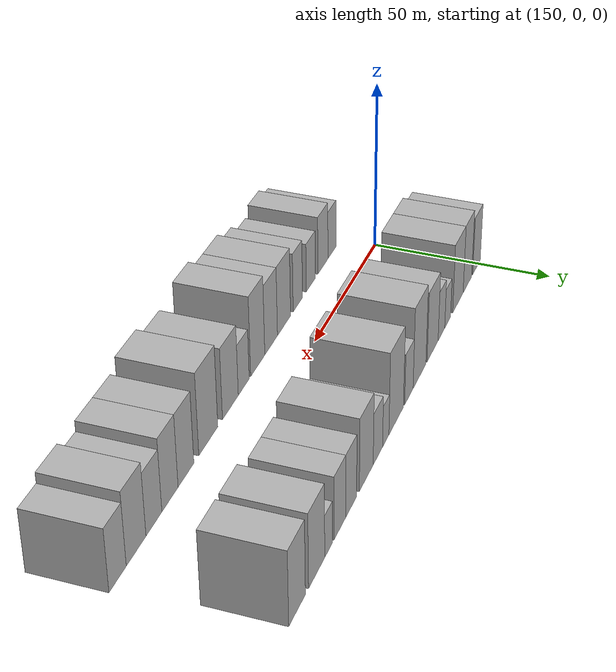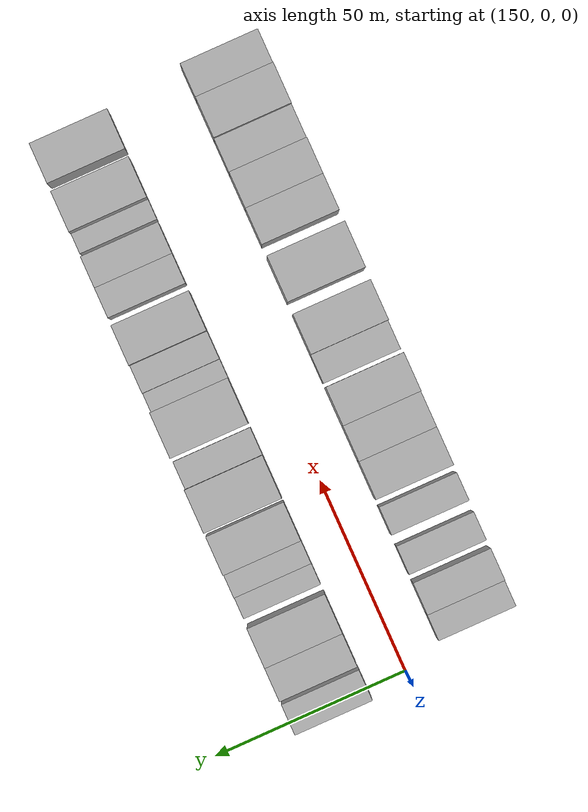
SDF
<sdf version="1.6">
 <world name="default">
  <model name="building_16">
   <static>1</static>
   <pose>152.1717 20.0000 0 0.000000 0.000000 1.570796</pose>
   <link name="link">
    <pose>0 0 9.00 0 0 0</pose>
    <collision name="collision"><geometry><box><size>20.0000 7.8726 18.0000</size></box></geometry></collision>
    <visual name="visual">
     <cast_shadows>0</cast_shadows>
     <geometry><box><size>20.0000 7.8726 18.0000</size></box></geometry>
     <material>
      <script>
       <uri>model://HANNAS_wall/materials/scripts</uri>
       <uri>model://HANNAS_wall/materials/textures</uri>
       <name>vrc/HANNAS_wall</name>
      </script>
     </material>
    </visual>
   </link>
  </model>
  <model name="building_17">
   <static>1</static>
   <pose>161.3731 20.0000 0 0.000000 0.000000 1.570796</pose>
   <link name="link">
    <pose>0 0 10.50 0 0 0</pose>
    <collision name="collision"><geometry><box><size>20.0000 8.5301 21.0000</size></box></geometry></collision>
    <visual name="visual">
     <cast_shadows>0</cast_shadows>
     <geometry><box><size>20.0000 8.5301 21.0000</size></box></geometry>
     <material>
      <script>
       <uri>model://HANNAS_wall/materials/scripts</uri>
       <uri>model://HANNAS_wall/materials/textures</uri>
       <name>vrc/HANNAS_wall</name>
      </script>
     </material>
    </visual>
   </link>
  </model>
  <model name="building_18">
   <static>1</static>
   <pose>170.7369 20.0000 0 0.000000 0.000000 1.570796</pose>
   <link name="link">
    <pose>0 0 10.50 0 0 0</pose>
    <collision name="collision"><geometry><box><size>20.0000 10.1977 21.0000</size></box></geometry></collision>
    <visual name="visual">
     <cast_shadows>0</cast_shadows>
     <geometry><box><size>20.0000 10.1977 21.0000</size></box></geometry>
     <material>
      <script>
       <uri>model://HANNAS_wall/materials/scripts</uri>
       <uri>model://HANNAS_wall/materials/textures</uri>
       <name>vrc/HANNAS_wall</name>
      </script>
     </material>
    </visual>
   </link>
  </model>
  <model name="building_19">
   <static>1</static>
   <pose>180.6110 20.0000 0 0.000000 0.000000 1.570796</pose>
   <link name="link">
    <pose>0 0 6.00 0 0 0</pose>
    <collision name="collision"><geometry><box><size>20.0000 5.5505 12.0000</size></box></geometry></collision>
    <visual name="visual">
     <cast_shadows>0</cast_shadows>
     <geometry><box><size>20.0000 5.5505 12.0000</size></box></geometry>
     <material>
      <script>
       <uri>model://HANNAS_wall/materials/scripts</uri>
       <uri>model://HANNAS_wall/materials/textures</uri>
       <name>vrc/HANNAS_wall</name>
      </script>
     </material>
    </visual>
   </link>
  </model>
  <model name="building_20">
   <static>1</static>
   <pose>186.4364 20.0000 0 0.000000 0.000000 1.570796</pose>
   <link name="link">
    <pose>0 0 7.50 0 0 0</pose>
    <collision name="collision"><geometry><box><size>20.0000 6.1003 15.0000</size></box></geometry></collision>
    <visual name="visual">
     <cast_shadows>0</cast_shadows>
     <geometry><box><size>20.0000 6.1003 15.0000</size></box></geometry>
     <material>
      <script>
       <uri>model://HANNAS_wall/materials/scripts</uri>
       <uri>model://HANNAS_wall/materials/textures</uri>
       <name>vrc/HANNAS_wall</name>
      </script>
     </material>
    </visual>
   </link>
  </model>
  <model name="building_21">
   <static>1</static>
   <pose>194.4654 20.0000 0 0.000000 0.000000 1.570796</pose>
   <link name="link">
    <pose>0 0 10.50 0 0 0</pose>
    <collision name="collision"><geometry><box><size>20.0000 9.9576 21.0000</size></box></geometry></collision>
    <visual name="visual">
     <cast_shadows>0</cast_shadows>
     <geometry><box><size>20.0000 9.9576 21.0000</size></box></geometry>
     <material>
      <script>
       <uri>model://HANNAS_wall/materials/scripts</uri>
       <uri>model://HANNAS_wall/materials/textures</uri>
       <name>vrc/HANNAS_wall</name>
      </script>
     </material>
    </visual>
   </link>
  </model>
  <model name="building_22">
   <static>1</static>
   <pose>205.9872 20.0000 0 0.000000 0.000000 1.570796</pose>
   <link name="link">
    <pose>0 0 12.00 0 0 0</pose>
    <collision name="collision"><geometry><box><size>20.0000 11.0861 24.0000</size></box></geometry></collision>
    <visual name="visual">
     <cast_shadows>0</cast_shadows>
     <geometry><box><size>20.0000 11.0861 24.0000</size></box></geometry>
     <material>
      <script>
       <uri>model://HANNAS_wall/materials/scripts</uri>
       <uri>model://HANNAS_wall/materials/textures</uri>
       <name>vrc/HANNAS_wall</name>
      </script>
     </material>
    </visual>
   </link>
  </model>
  <model name="building_23">
   <static>1</static>
   <pose>215.0701 20.0000 0 0.000000 0.000000 1.570796</pose>
   <link name="link">
    <pose>0 0 7.50 0 0 0</pose>
    <collision name="collision"><geometry><box><size>20.0000 7.0795 15.0000</size></box></geometry></collision>
    <visual name="visual">
     <cast_shadows>0</cast_shadows>
     <geometry><box><size>20.0000 7.0795 15.0000</size></box></geometry>
     <material>
      <script>
       <uri>model://HANNAS_wall/materials/scripts</uri>
       <uri>model://HANNAS_wall/materials/textures</uri>
       <name>vrc/HANNAS_wall</name>
      </script>
     </material>
    </visual>
   </link>
  </model>
  <model name="building_24">
   <static>1</static>
   <pose>225.4711 20.0000 0 0.000000 0.000000 1.570796</pose>
   <link name="link">
    <pose>0 0 12.00 0 0 0</pose>
    <collision name="collision"><geometry><box><size>20.0000 11.7225 24.0000</size></box></geometry></collision>
    <visual name="visual">
     <cast_shadows>0</cast_shadows>
     <geometry><box><size>20.0000 11.7225 24.0000</size></box></geometry>
     <material>
      <script>
       <uri>model://HANNAS_wall/materials/scripts</uri>
       <uri>model://HANNAS_wall/materials/textures</uri>
       <name>vrc/HANNAS_wall</name>
      </script>
     </material>
    </visual>
   </link>
  </model>
  <model name="building_25">
   <static>1</static>
   <pose>233.8151 20.0000 0 0.000000 0.000000 1.570796</pose>
   <link name="link">
    <pose>0 0 6.00 0 0 0</pose>
    <collision name="collision"><geometry><box><size>20.0000 4.9655 12.0000</size></box></geometry></collision>
    <visual name="visual">
     <cast_shadows>0</cast_shadows>
     <geometry><box><size>20.0000 4.9655 12.0000</size></box></geometry>
     <material>
      <script>
       <uri>model://HANNAS_wall/materials/scripts</uri>
       <uri>model://HANNAS_wall/materials/textures</uri>
       <name>vrc/HANNAS_wall</name>
      </script>
     </material>
    </visual>
   </link>
  </model>
  <model name="building_26">
   <static>1</static>
   <pose>239.8933 20.0000 0 0.000000 0.000000 1.570796</pose>
   <link name="link">
    <pose>0 0 7.50 0 0 0</pose>
    <collision name="collision"><geometry><box><size>20.0000 7.1910 15.0000</size></box></geometry></collision>
    <visual name="visual">
     <cast_shadows>0</cast_shadows>
     <geometry><box><size>20.0000 7.1910 15.0000</size></box></geometry>
     <material>
      <script>
       <uri>model://HANNAS_wall/materials/scripts</uri>
       <uri>model://HANNAS_wall/materials/textures</uri>
       <name>vrc/HANNAS_wall</name>
      </script>
     </material>
    </visual>
   </link>
  </model>
  <model name="building_27">
   <static>1</static>
   <pose>248.6261 20.0000 0 0.000000 0.000000 1.570796</pose>
   <link name="link">
    <pose>0 0 10.50 0 0 0</pose>
    <collision name="collision"><geometry><box><size>20.0000 10.2746 21.0000</size></box></geometry></collision>
    <visual name="visual">
     <cast_shadows>0</cast_shadows>
     <geometry><box><size>20.0000 10.2746 21.0000</size></box></geometry>
     <material>
      <script>
       <uri>model://HANNAS_wall/materials/scripts</uri>
       <uri>model://HANNAS_wall/materials/textures</uri>
       <name>vrc/HANNAS_wall</name>
      </script>
     </material>
    </visual>
   </link>
  </model>
  <model name="building_28">
   <static>1</static>
   <pose>259.6235 20.0000 0 0.000000 0.000000 1.570796</pose>
   <link name="link">
    <pose>0 0 9.00 0 0 0</pose>
    <collision name="collision"><geometry><box><size>20.0000 7.7201 18.0000</size></box></geometry></collision>
    <visual name="visual">
     <cast_shadows>0</cast_shadows>
     <geometry><box><size>20.0000 7.7201 18.0000</size></box></geometry>
     <material>
      <script>
       <uri>model://HANNAS_wall/materials/scripts</uri>
       <uri>model://HANNAS_wall/materials/textures</uri>
       <name>vrc/HANNAS_wall</name>
      </script>
     </material>
    </visual>
   </link>
  </model>
  <model name="building_29">
   <static>1</static>
   <pose>267.5244 20.0000 0 0.000000 0.000000 1.570796</pose>
   <link name="link">
    <pose>0 0 9.00 0 0 0</pose>
    <collision name="collision"><geometry><box><size>20.0000 8.0817 18.0000</size></box></geometry></collision>
    <visual name="visual">
     <cast_shadows>0</cast_shadows>
     <geometry><box><size>20.0000 8.0817 18.0000</size></box></geometry>
     <material>
      <script>
       <uri>model://HANNAS_wall/materials/scripts</uri>
       <uri>model://HANNAS_wall/materials/textures</uri>
       <name>vrc/HANNAS_wall</name>
      </script>
     </material>
    </visual>
   </link>
  </model>
  <model name="building_30">
   <static>1</static>
   <pose>275.1618 20.0000 0 0.000000 0.000000 1.570796</pose>
   <link name="link">
    <pose>0 0 6.00 0 0 0</pose>
    <collision name="collision"><geometry><box><size>20.0000 5.1931 12.0000</size></box></geometry></collision>
    <visual name="visual">
     <cast_shadows>0</cast_shadows>
     <geometry><box><size>20.0000 5.1931 12.0000</size></box></geometry>
     <material>
      <script>
       <uri>model://HANNAS_wall/materials/scripts</uri>
       <uri>model://HANNAS_wall/materials/textures</uri>
       <name>vrc/HANNAS_wall</name>
      </script>
     </material>
    </visual>
   </link>
  </model>
  <model name="building_31">
   <static>1</static>
   <pose>282.9923 20.0000 0 0.000000 0.000000 1.570796</pose>
   <link name="link">
    <pose>0 0 10.50 0 0 0</pose>
    <collision name="collision"><geometry><box><size>20.0000 10.4677 21.0000</size></box></geometry></collision>
    <visual name="visual">
     <cast_shadows>0</cast_shadows>
     <geometry><box><size>20.0000 10.4677 21.0000</size></box></geometry>
     <material>
      <script>
       <uri>model://HANNAS_wall/materials/scripts</uri>
       <uri>model://HANNAS_wall/materials/textures</uri>
       <name>vrc/HANNAS_wall</name>
      </script>
     </material>
    </visual>
   </link>
  </model>
  <model name="building_32">
   <static>1</static>
   <pose>295.3724 20.0000 0 0.000000 0.000000 1.570796</pose>
   <link name="link">
    <pose>0 0 10.50 0 0 0</pose>
    <collision name="collision"><geometry><box><size>20.0000 10.2925 21.0000</size></box></geometry></collision>
    <visual name="visual">
     <cast_shadows>0</cast_shadows>
     <geometry><box><size>20.0000 10.2925 21.0000</size></box></geometry>
     <material>
      <script>
       <uri>model://HANNAS_wall/materials/scripts</uri>
       <uri>model://HANNAS_wall/materials/textures</uri>
       <name>vrc/HANNAS_wall</name>
      </script>
     </material>
    </visual>
   </link>
  </model>
  <model name="building_48">
   <static>1</static>
   <pose>157.8474 -20.0000 0 0.000000 0.000000 1.570796</pose>
   <link name="link">
    <pose>0 0 7.50 0 0 0</pose>
    <collision name="collision"><geometry><box><size>20.0000 6.8130 15.0000</size></box></geometry></collision>
    <visual name="visual">
     <cast_shadows>0</cast_shadows>
     <geometry><box><size>20.0000 6.8130 15.0000</size></box></geometry>
     <material>
      <script>
       <uri>model://HANNAS_wall/materials/scripts</uri>
       <uri>model://HANNAS_wall/materials/textures</uri>
       <name>vrc/HANNAS_wall</name>
      </script>
     </material>
    </visual>
   </link>
  </model>
  <model name="building_49">
   <static>1</static>
   <pose>165.3828 -20.0000 0 0.000000 0.000000 1.570796</pose>
   <link name="link">
    <pose>0 0 9.00 0 0 0</pose>
    <collision name="collision"><geometry><box><size>20.0000 8.2578 18.0000</size></box></geometry></collision>
    <visual name="visual">
     <cast_shadows>0</cast_shadows>
     <geometry><box><size>20.0000 8.2578 18.0000</size></box></geometry>
     <material>
      <script>
       <uri>model://HANNAS_wall/materials/scripts</uri>
       <uri>model://HANNAS_wall/materials/textures</uri>
       <name>vrc/HANNAS_wall</name>
      </script>
     </material>
    </visual>
   </link>
  </model>
  <model name="building_50">
   <static>1</static>
   <pose>175.1777 -20.0000 0 0.000000 0.000000 1.570796</pose>
   <link name="link">
    <pose>0 0 7.50 0 0 0</pose>
    <collision name="collision"><geometry><box><size>20.0000 7.3320 15.0000</size></box></geometry></collision>
    <visual name="visual">
     <cast_shadows>0</cast_shadows>
     <geometry><box><size>20.0000 7.3320 15.0000</size></box></geometry>
     <material>
      <script>
       <uri>model://HANNAS_wall/materials/scripts</uri>
       <uri>model://HANNAS_wall/materials/textures</uri>
       <name>vrc/HANNAS_wall</name>
      </script>
     </material>
    </visual>
   </link>
  </model>
  <model name="building_51">
   <static>1</static>
   <pose>185.4542 -20.0000 0 0.000000 0.000000 1.570796</pose>
   <link name="link">
    <pose>0 0 9.00 0 0 0</pose>
    <collision name="collision"><geometry><box><size>20.0000 7.2210 18.0000</size></box></geometry></collision>
    <visual name="visual">
     <cast_shadows>0</cast_shadows>
     <geometry><box><size>20.0000 7.2210 18.0000</size></box></geometry>
     <material>
      <script>
       <uri>model://HANNAS_wall/materials/scripts</uri>
       <uri>model://HANNAS_wall/materials/textures</uri>
       <name>vrc/HANNAS_wall</name>
      </script>
     </material>
    </visual>
   </link>
  </model>
  <model name="building_52">
   <static>1</static>
   <pose>195.9559 -20.0000 0 0.000000 0.000000 1.570796</pose>
   <link name="link">
    <pose>0 0 10.50 0 0 0</pose>
    <collision name="collision"><geometry><box><size>20.0000 9.7824 21.0000</size></box></geometry></collision>
    <visual name="visual">
     <cast_shadows>0</cast_shadows>
     <geometry><box><size>20.0000 9.7824 21.0000</size></box></geometry>
     <material>
      <script>
       <uri>model://HANNAS_wall/materials/scripts</uri>
       <uri>model://HANNAS_wall/materials/textures</uri>
       <name>vrc/HANNAS_wall</name>
      </script>
     </material>
    </visual>
   </link>
  </model>
  <model name="building_53">
   <static>1</static>
   <pose>205.4444 -20.0000 0 0.000000 0.000000 1.570796</pose>
   <link name="link">
    <pose>0 0 10.50 0 0 0</pose>
    <collision name="collision"><geometry><box><size>20.0000 9.1945 21.0000</size></box></geometry></collision>
    <visual name="visual">
     <cast_shadows>0</cast_shadows>
     <geometry><box><size>20.0000 9.1945 21.0000</size></box></geometry>
     <material>
      <script>
       <uri>model://HANNAS_wall/materials/scripts</uri>
       <uri>model://HANNAS_wall/materials/textures</uri>
       <name>vrc/HANNAS_wall</name>
      </script>
     </material>
    </visual>
   </link>
  </model>
  <model name="building_54">
   <static>1</static>
   <pose>214.9911 -20.0000 0 0.000000 0.000000 1.570796</pose>
   <link name="link">
    <pose>0 0 12.00 0 0 0</pose>
    <collision name="collision"><geometry><box><size>20.0000 9.8989 24.0000</size></box></geometry></collision>
    <visual name="visual">
     <cast_shadows>0</cast_shadows>
     <geometry><box><size>20.0000 9.8989 24.0000</size></box></geometry>
     <material>
      <script>
       <uri>model://HANNAS_wall/materials/scripts</uri>
       <uri>model://HANNAS_wall/materials/textures</uri>
       <name>vrc/HANNAS_wall</name>
      </script>
     </material>
    </visual>
   </link>
  </model>
  <model name="building_55">
   <static>1</static>
   <pose>224.6462 -20.0000 0 0.000000 0.000000 1.570796</pose>
   <link name="link">
    <pose>0 0 7.50 0 0 0</pose>
    <collision name="collision"><geometry><box><size>20.0000 7.4113 15.0000</size></box></geometry></collision>
    <visual name="visual">
     <cast_shadows>0</cast_shadows>
     <geometry><box><size>20.0000 7.4113 15.0000</size></box></geometry>
     <material>
      <script>
       <uri>model://HANNAS_wall/materials/scripts</uri>
       <uri>model://HANNAS_wall/materials/textures</uri>
       <name>vrc/HANNAS_wall</name>
      </script>
     </material>
    </visual>
   </link>
  </model>
  <model name="building_56">
   <static>1</static>
   <pose>233.5383 -20.0000 0 0.000000 0.000000 1.570796</pose>
   <link name="link">
    <pose>0 0 10.50 0 0 0</pose>
    <collision name="collision"><geometry><box><size>20.0000 10.3728 21.0000</size></box></geometry></collision>
    <visual name="visual">
     <cast_shadows>0</cast_shadows>
     <geometry><box><size>20.0000 10.3728 21.0000</size></box></geometry>
     <material>
      <script>
       <uri>model://HANNAS_wall/materials/scripts</uri>
       <uri>model://HANNAS_wall/materials/textures</uri>
       <name>vrc/HANNAS_wall</name>
      </script>
     </material>
    </visual>
   </link>
  </model>
  <model name="building_57">
   <static>1</static>
   <pose>247.6540 -20.0000 0 0.000000 0.000000 1.570796</pose>
   <link name="link">
    <pose>0 0 12.00 0 0 0</pose>
    <collision name="collision"><geometry><box><size>20.0000 11.8586 24.0000</size></box></geometry></collision>
    <visual name="visual">
     <cast_shadows>0</cast_shadows>
     <geometry><box><size>20.0000 11.8586 24.0000</size></box></geometry>
     <material>
      <script>
       <uri>model://HANNAS_wall/materials/scripts</uri>
       <uri>model://HANNAS_wall/materials/textures</uri>
       <name>vrc/HANNAS_wall</name>
      </script>
     </material>
    </visual>
   </link>
  </model>
  <model name="building_58">
   <static>1</static>
   <pose>261.2621 -20.0000 0 0.000000 0.000000 1.570796</pose>
   <link name="link">
    <pose>0 0 10.50 0 0 0</pose>
    <collision name="collision"><geometry><box><size>20.0000 9.3575 21.0000</size></box></geometry></collision>
    <visual name="visual">
     <cast_shadows>0</cast_shadows>
     <geometry><box><size>20.0000 9.3575 21.0000</size></box></geometry>
     <material>
      <script>
       <uri>model://HANNAS_wall/materials/scripts</uri>
       <uri>model://HANNAS_wall/materials/textures</uri>
       <name>vrc/HANNAS_wall</name>
      </script>
     </material>
    </visual>
   </link>
  </model>
  <model name="building_59">
   <static>1</static>
   <pose>270.5909 -20.0000 0 0.000000 0.000000 1.570796</pose>
   <link name="link">
    <pose>0 0 10.50 0 0 0</pose>
    <collision name="collision"><geometry><box><size>20.0000 9.3000 21.0000</size></box></geometry></collision>
    <visual name="visual">
     <cast_shadows>0</cast_shadows>
     <geometry><box><size>20.0000 9.3000 21.0000</size></box></geometry>
     <material>
      <script>
       <uri>model://HANNAS_wall/materials/scripts</uri>
       <uri>model://HANNAS_wall/materials/textures</uri>
       <name>vrc/HANNAS_wall</name>
      </script>
     </material>
    </visual>
   </link>
  </model>
  <model name="building_60">
   <static>1</static>
   <pose>279.6350 -20.0000 0 0.000000 0.000000 1.570796</pose>
   <link name="link">
    <pose>0 0 9.00 0 0 0</pose>
    <collision name="collision"><geometry><box><size>20.0000 8.7884 18.0000</size></box></geometry></collision>
    <visual name="visual">
     <cast_shadows>0</cast_shadows>
     <geometry><box><size>20.0000 8.7884 18.0000</size></box></geometry>
     <material>
      <script>
       <uri>model://HANNAS_wall/materials/scripts</uri>
       <uri>model://HANNAS_wall/materials/textures</uri>
       <name>vrc/HANNAS_wall</name>
      </script>
     </material>
    </visual>
   </link>
  </model>
  <model name="building_61">
   <static>1</static>
   <pose>289.2761 -20.0000 0 0.000000 0.000000 1.570796</pose>
   <link name="link">
    <pose>0 0 10.50 0 0 0</pose>
    <collision name="collision"><geometry><box><size>20.0000 10.4938 21.0000</size></box></geometry></collision>
    <visual name="visual">
     <cast_shadows>0</cast_shadows>
     <geometry><box><size>20.0000 10.4938 21.0000</size></box></geometry>
     <material>
      <script>
       <uri>model://HANNAS_wall/materials/scripts</uri>
       <uri>model://HANNAS_wall/materials/textures</uri>
       <name>vrc/HANNAS_wall</name>
      </script>
     </material>
    </visual>
   </link>
  </model>
  <model name="building_62">
   <static>1</static>
   <pose>298.9684 -20.0000 0 0.000000 0.000000 1.570796</pose>
   <link name="link">
    <pose>0 0 9.00 0 0 0</pose>
    <collision name="collision"><geometry><box><size>20.0000 8.8908 18.0000</size></box></geometry></collision>
    <visual name="visual">
     <cast_shadows>0</cast_shadows>
     <geometry><box><size>20.0000 8.8908 18.0000</size></box></geometry>
     <material>
      <script>
       <uri>model://HANNAS_wall/materials/scripts</uri>
       <uri>model://HANNAS_wall/materials/textures</uri>
       <name>vrc/HANNAS_wall</name>
      </script>
     </material>
    </visual>
   </link>
  </model>
 </world>
</sdf>
